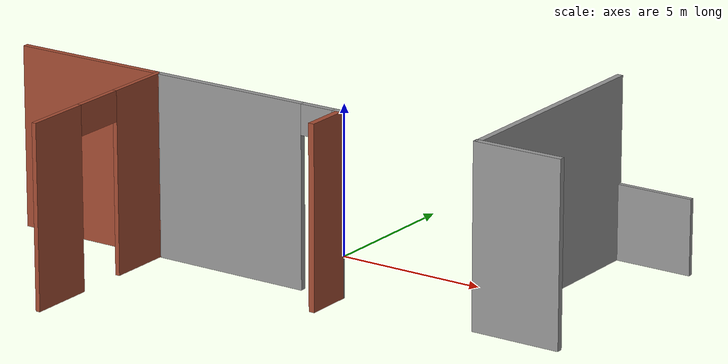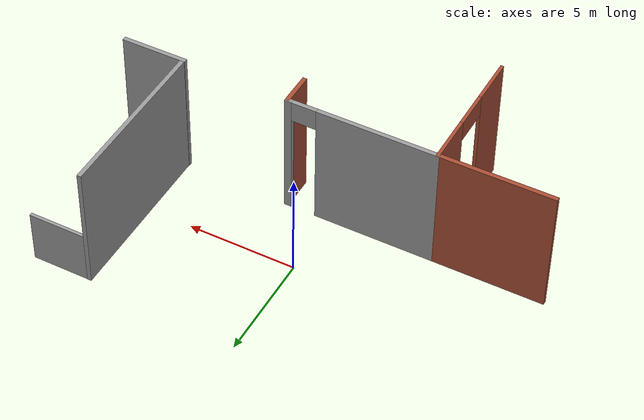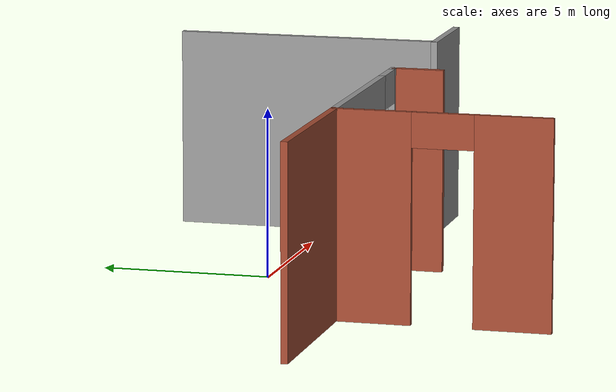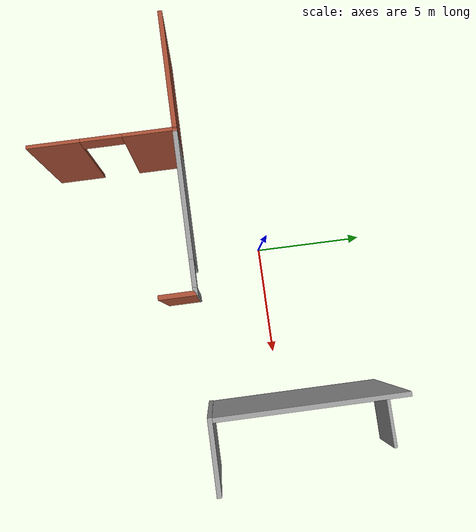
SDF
<?xml version='1.0'?>
<sdf version='1.7'>
  <model name='WAREHOUSE_EXTENSION'>
    <pose>0.025109 -2.353 0 0 -0 0</pose>
    <link name='Wall_0'>
      <pose>-4.80011 -3.924 0 0 -0 1.5708</pose>
      <visual name='Wall_0_Visual_0'>
        <pose>-2.01793 0 3 0 -0 0</pose>
        <geometry>
          <box>
            <size>2.21415 0.15 6</size>
          </box>
        </geometry>
        <material>
          <script>
            <uri>file://media/materials/scripts/gazebo.material</uri>
            <name>Gazebo/Bricks</name>
          </script>
          <ambient>1 1 1 1</ambient>
        </material>
        <meta>
          <layer>0</layer>
        </meta>
      </visual>
      <collision name='Wall_0_Collision_0'>
        <geometry>
          <box>
            <size>2.21415 0.15 6</size>
          </box>
        </geometry>
        <pose>-2.01793 0 3 0 -0 0</pose>
      </collision>
      <visual name='Wall_0_Visual_1'>
        <pose>1.98572 0 3 0 -0 0</pose>
        <geometry>
          <box>
            <size>2.27856 0.15 6</size>
          </box>
        </geometry>
        <material>
          <script>
            <uri>file://media/materials/scripts/gazebo.material</uri>
            <name>Gazebo/Bricks</name>
          </script>
          <ambient>1 1 1 1</ambient>
        </material>
        <meta>
          <layer>0</layer>
        </meta>
      </visual>
      <collision name='Wall_0_Collision_1'>
        <geometry>
          <box>
            <size>2.27856 0.15 6</size>
          </box>
        </geometry>
        <pose>1.98572 0 3 0 -0 0</pose>
      </collision>
      <visual name='Wall_0_Visual_2'>
        <pose>-0.032207 0 5.5 0 -0 0</pose>
        <geometry>
          <box>
            <size>1.75729 0.15 1</size>
          </box>
        </geometry>
        <material>
          <script>
            <uri>file://media/materials/scripts/gazebo.material</uri>
            <name>Gazebo/Bricks</name>
          </script>
          <ambient>1 1 1 1</ambient>
        </material>
        <meta>
          <layer>0</layer>
        </meta>
      </visual>
      <collision name='Wall_0_Collision_2'>
        <geometry>
          <box>
            <size>1.75729 0.15 1</size>
          </box>
        </geometry>
        <pose>-0.032207 0 5.5 0 -0 0</pose>
      </collision>
    </link>
    <link name='Wall_11'>
      <collision name='Wall_11_Collision'>
        <geometry>
          <box>
            <size>8.05 0.2 6</size>
          </box>
        </geometry>
        <pose>0 0 3 0 -0 0</pose>
      </collision>
      <visual name='Wall_11_Visual'>
        <pose>0 0 3 0 -0 0</pose>
        <geometry>
          <box>
            <size>8.05 0.2 6</size>
          </box>
        </geometry>
        <material>
          <script>
            <uri>file://media/materials/scripts/gazebo.material</uri>
            <name>Gazebo/Grey</name>
          </script>
          <ambient>1 1 1 1</ambient>
        </material>
        <meta>
          <layer>0</layer>
        </meta>
      </visual>
      <pose>7.06889 3.024 0 0 -0 1.5708</pose>
    </link>
    <link name='Wall_13'>
      <collision name='Wall_13_Collision'>
        <geometry>
          <box>
            <size>3.05015 0.2 6</size>
          </box>
        </geometry>
        <pose>0 0 3 0 -0 0</pose>
      </collision>
      <visual name='Wall_13_Visual'>
        <pose>0 0 3 0 -0 0</pose>
        <geometry>
          <box>
            <size>3.05015 0.2 6</size>
          </box>
        </geometry>
        <material>
          <script>
            <uri>file://media/materials/scripts/gazebo.material</uri>
            <name>Gazebo/Grey</name>
          </script>
          <ambient>1 1 1 1</ambient>
        </material>
        <meta>
          <layer>0</layer>
        </meta>
      </visual>
      <pose>8.47489 -0.943 0 0 -0 3.14159</pose>
    </link>
    <link name='Wall_15'>
      <collision name='Wall_15_Collision'>
        <geometry>
          <box>
            <size>2.75 0.15 2.5</size>
          </box>
        </geometry>
        <pose>0 0 1.25 0 -0 0</pose>
      </collision>
      <visual name='Wall_15_Visual'>
        <pose>0 0 1.25 0 -0 0</pose>
        <geometry>
          <box>
            <size>2.75 0.15 2.5</size>
          </box>
        </geometry>
        <material>
          <script>
            <uri>file://media/materials/scripts/gazebo.material</uri>
            <name>Gazebo/Grey</name>
          </script>
          <ambient>1 1 1 1</ambient>
        </material>
        <meta>
          <layer>0</layer>
        </meta>
      </visual>
      <pose>8.4075 6.9658 0 0 -0 3.14159</pose>
    </link>
    <link name='Wall_4'>
      <collision name='Wall_4_Collision'>
        <geometry>
          <box>
            <size>5.29972 0.2 6</size>
          </box>
        </geometry>
        <pose>0 0 3 0 -0 0</pose>
      </collision>
      <visual name='Wall_4_Visual'>
        <pose>0 0 3 0 -0 0</pose>
        <geometry>
          <box>
            <size>5.29972 0.2 6</size>
          </box>
        </geometry>
        <material>
          <script>
            <uri>file://media/materials/scripts/gazebo.material</uri>
            <name>Gazebo/Bricks</name>
          </script>
          <ambient>1 1 1 1</ambient>
        </material>
        <meta>
          <layer>0</layer>
        </meta>
      </visual>
      <pose>-7.35011 -0.874 0 0 -0 3.14159</pose>
    </link>
    <link name='Wall_6'>
      <pose>-1.37511 -0.874 0 0 -0 0</pose>
      <visual name='Wall_6_Visual_0'>
        <pose>-0.737221 0 3 0 -0 0</pose>
        <geometry>
          <box>
            <size>5.57556 0.2 6</size>
          </box>
        </geometry>
        <material>
          <script>
            <uri>file://media/materials/scripts/gazebo.material</uri>
            <name>Gazebo/Grey</name>
          </script>
          <ambient>1 1 1 1</ambient>
        </material>
        <meta>
          <layer>0</layer>
        </meta>
      </visual>
      <collision name='Wall_6_Collision_0'>
        <geometry>
          <box>
            <size>5.57556 0.2 6</size>
          </box>
        </geometry>
        <pose>-0.737221 0 3 0 -0 0</pose>
      </collision>
      <visual name='Wall_6_Visual_1'>
        <pose>3.35778 0 3 0 -0 0</pose>
        <geometry>
          <box>
            <size>0.334442 0.2 6</size>
          </box>
        </geometry>
        <material>
          <script>
            <uri>file://media/materials/scripts/gazebo.material</uri>
            <name>Gazebo/Grey</name>
          </script>
          <ambient>1 1 1 1</ambient>
        </material>
        <meta>
          <layer>0</layer>
        </meta>
      </visual>
      <collision name='Wall_6_Collision_1'>
        <geometry>
          <box>
            <size>0.334442 0.2 6</size>
          </box>
        </geometry>
        <pose>3.35778 0 3 0 -0 0</pose>
      </collision>
      <visual name='Wall_6_Visual_2'>
        <pose>2.62056 0 5.5 0 -0 0</pose>
        <geometry>
          <box>
            <size>1.14 0.2 1</size>
          </box>
        </geometry>
        <material>
          <script>
            <uri>file://media/materials/scripts/gazebo.material</uri>
            <name>Gazebo/Grey</name>
          </script>
          <ambient>1 1 1 1</ambient>
        </material>
        <meta>
          <layer>0</layer>
        </meta>
      </visual>
      <collision name='Wall_6_Collision_2'>
        <geometry>
          <box>
            <size>1.14 0.2 1</size>
          </box>
        </geometry>
        <pose>2.62056 0 5.5 0 -0 0</pose>
      </collision>
    </link>
    <link name='Wall_9'>
      <collision name='Wall_9_Collision'>
        <geometry>
          <box>
            <size>1.55017 0.2 6</size>
          </box>
        </geometry>
        <pose>0 0 3 0 -0 0</pose>
      </collision>
      <visual name='Wall_9_Visual'>
        <pose>0 0 3 0 -0 0</pose>
        <geometry>
          <box>
            <size>1.55017 0.2 6</size>
          </box>
        </geometry>
        <material>
          <script>
            <uri>file://media/materials/scripts/gazebo.material</uri>
            <name>Gazebo/Bricks</name>
          </script>
          <ambient>1 1 1 1</ambient>
        </material>
        <meta>
          <layer>0</layer>
        </meta>
      </visual>
      <pose>2.05089 -1.614 0 0 -0 -1.5708</pose>
    </link>
    <static>1</static>
  </model>
</sdf>
